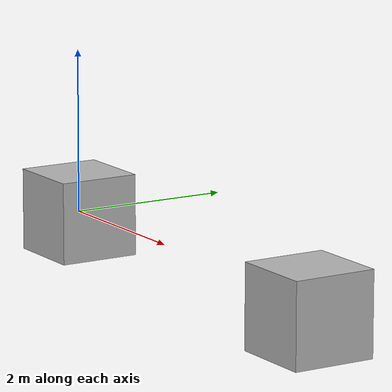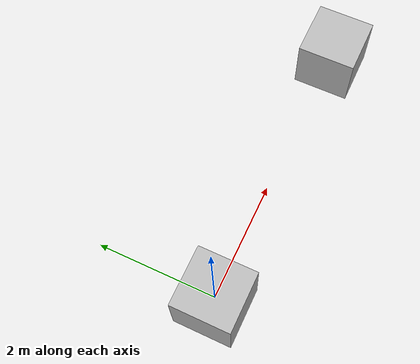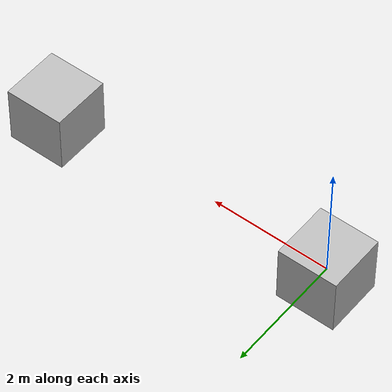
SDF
<?xml version="1.0" ?>
<sdf version="1.6">
  <world name="buoyant_tethys">
    <physics name="1ms" type="ode">
      <max_step_size>0.001</max_step_size>
      <real_time_factor>0</real_time_factor>
    </physics>
    <plugin
      filename="gz-sim-physics-system"
      name="gz::sim::systems::Physics">
    </plugin>
    <plugin
      filename="gz-sim-buoyancy-system"
      name="gz::sim::systems::Buoyancy">
      <uniform_fluid_density>1000</uniform_fluid_density>
    </plugin>

    <light type="directional" name="sun">
      <cast_shadows>true</cast_shadows>
      <pose>0 0 10 0 0 0</pose>
      <diffuse>1 1 1 1</diffuse>
      <specular>0.5 0.5 0.5 1</specular>
      <attenuation>
        <range>1000</range>
        <constant>0.9</constant>
        <linear>0.01</linear>
        <quadratic>0.001</quadratic>
      </attenuation>
      <direction>-0.5 0.1 -0.9</direction>
    </light>

    <model name="buoyant_box">
      <pose>0 0 0 0 0 0</pose>
      <link name='body'>
        <inertial>
          <mass>1000</mass>
          <inertia>
            <ixx>133.3333</ixx>
            <iyy>133.3333</iyy>
            <izz>133.3333</izz>
          </inertia>
        </inertial>
        <visual name='body_visual'>
          <geometry>
            <box>
              <size>1 1 1</size>
            </box>
          </geometry>
        </visual>
        <collision name='body_collision'>
          <geometry>
            <box>
              <size>1 1 1</size>
            </box>
          </geometry>
        </collision>
      </link>
      <plugin
        filename="gz-sim-buoyancy-engine-system"
        name="gz::sim::systems::BuoyancyEngine">
        <link_name>body</link_name>
        <namespace>buoyant_box</namespace>
        <min_volume>0.001</min_volume>
        <neutral_volume>0.002</neutral_volume>
        <default_volume>0.002</default_volume>
        <max_volume>0.003</max_volume>
        <max_inflation_rate>0.0003</max_inflation_rate>
      </plugin>
    </model>

    <model name="buoyant_box_w_surface">
      <pose>5 0 -0.1 0 0 0</pose>
      <link name='body'>
        <inertial>
          <mass>1000</mass>
          <inertia>
            <ixx>133.3333</ixx>
            <iyy>133.3333</iyy>
            <izz>133.3333</izz>
          </inertia>
        </inertial>
        <visual name='body_visual'>
          <geometry>
            <box>
              <size>1 1 1</size>
            </box>
          </geometry>
        </visual>
        <collision name='body_collision'>
          <geometry>
            <box>
              <size>1 1 1</size>
            </box>
          </geometry>
        </collision>
      </link>
      <plugin
        filename="gz-sim-buoyancy-engine-system"
        name="gz::sim::systems::BuoyancyEngine">
        <link_name>body</link_name>
        <namespace>buoyant_box</namespace>
        <min_volume>0.001</min_volume>
        <neutral_volume>0.002</neutral_volume>
        <default_volume>0.002</default_volume>
        <max_volume>0.003</max_volume>
        <max_inflation_rate>0.0003</max_inflation_rate>
        <surface>0</surface>
      </plugin>
    </model>
  </world>
</sdf>
